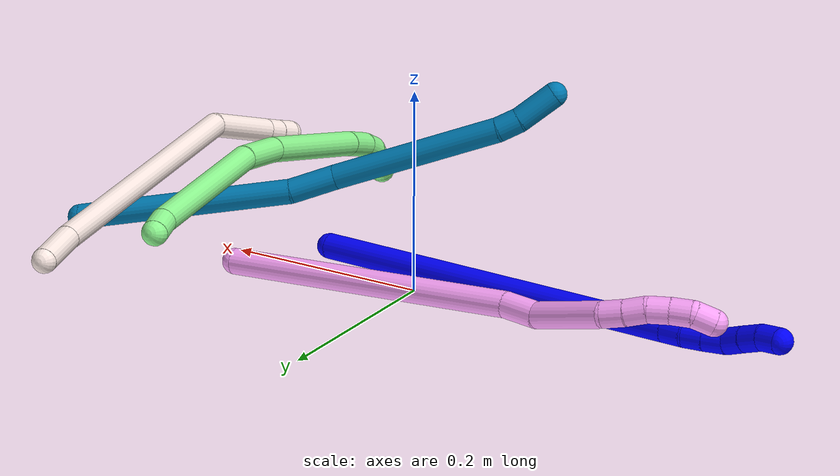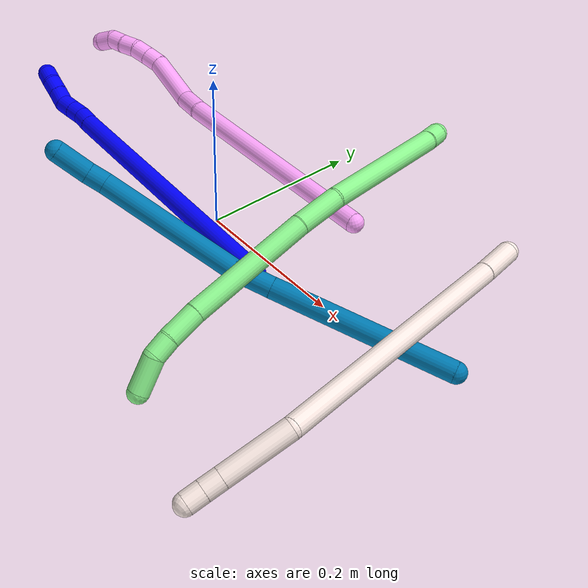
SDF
<sdf version="1.7">
 <world name="default">
  <model name="1">
   <static>0</static>
   <link name="1">
    <collision name="collision-cylinder-e_1_1_4">
     <pose>-0.186642 -0.009663 -0.02153 2.71971 -1.44502 -2.66501</pose>
     <geometry><cylinder><radius>0.0125</radius><length>0.376257</length></cylinder></geometry>
     <surface>
      <friction><ode><mu>1.16</mu><mu2>1.16</mu2><slip1>0</slip1><slip2>0</slip2></ode></friction>
      <contact><ode><kp>1e+06</kp><kd>1</kd><max_vel>0</max_vel><min_depth>0.001</min_depth></ode></contact>
     </surface>
    </collision>
    <visual name="visual-cylinder-e_1_1_4">
     <pose>-0.186642 -0.009663 -0.02153 2.71971 -1.44502 -2.66501</pose>
     <geometry><cylinder><radius>0.0125</radius><length>0.376257</length></cylinder></geometry>
     <material><ambient>0 0 1 1</ambient></material>
    </visual>
    <collision name="collision-cylinder-e_2_4_5">
     <pose>-0.383869 -0.019695 -0.044904 2.94471 -1.39492 -2.90695</pose>
     <geometry><cylinder><radius>0.0125</radius><length>0.0215</length></cylinder></geometry>
     <surface>
      <friction><ode><mu>1.16</mu><mu2>1.16</mu2><slip1>0</slip1><slip2>0</slip2></ode></friction>
      <contact><ode><kp>1e+06</kp><kd>1</kd><max_vel>0</max_vel><min_depth>0.001</min_depth></ode></contact>
     </surface>
    </collision>
    <visual name="visual-cylinder-e_2_4_5">
     <pose>-0.383869 -0.019695 -0.044904 2.94471 -1.39492 -2.90695</pose>
     <geometry><cylinder><radius>0.0125</radius><length>0.0215</length></cylinder></geometry>
     <material><ambient>0 0 1 1</ambient></material>
    </visual>
    <collision name="collision-cylinder-e_3_5_6">
     <pose>-0.404504 -0.020289 -0.046749 1.57332 -1.5483 -1.55082</pose>
     <geometry><cylinder><radius>0.0125</radius><length>0.020106</length></cylinder></geometry>
     <surface>
      <friction><ode><mu>1.16</mu><mu2>1.16</mu2><slip1>0</slip1><slip2>0</slip2></ode></friction>
      <contact><ode><kp>1e+06</kp><kd>1</kd><max_vel>0</max_vel><min_depth>0.001</min_depth></ode></contact>
     </surface>
    </collision>
    <visual name="visual-cylinder-e_3_5_6">
     <pose>-0.404504 -0.020289 -0.046749 1.57332 -1.5483 -1.55082</pose>
     <geometry><cylinder><radius>0.0125</radius><length>0.020106</length></cylinder></geometry>
     <material><ambient>0 0 1 1</ambient></material>
    </visual>
    <collision name="collision-cylinder-e_4_6_7">
     <pose>-0.425304 -0.020434 -0.046728 -1.30361 -1.56296 1.29606</pose>
     <geometry><cylinder><radius>0.0125</radius><length>0.021501</length></cylinder></geometry>
     <surface>
      <friction><ode><mu>1.16</mu><mu2>1.16</mu2><slip1>0</slip1><slip2>0</slip2></ode></friction>
      <contact><ode><kp>1e+06</kp><kd>1</kd><max_vel>0</max_vel><min_depth>0.001</min_depth></ode></contact>
     </surface>
    </collision>
    <visual name="visual-cylinder-e_4_6_7">
     <pose>-0.425304 -0.020434 -0.046728 -1.30361 -1.56296 1.29606</pose>
     <geometry><cylinder><radius>0.0125</radius><length>0.021501</length></cylinder></geometry>
     <material><ambient>0 0 1 1</ambient></material>
    </visual>
    <collision name="collision-cylinder-e_5_7_8">
     <pose>-0.445386 -0.017454 -0.049272 -2.29549 -1.17752 1.95512</pose>
     <geometry><cylinder><radius>0.0125</radius><length>0.020206</length></cylinder></geometry>
     <surface>
      <friction><ode><mu>1.16</mu><mu2>1.16</mu2><slip1>0</slip1><slip2>0</slip2></ode></friction>
      <contact><ode><kp>1e+06</kp><kd>1</kd><max_vel>0</max_vel><min_depth>0.001</min_depth></ode></contact>
     </surface>
    </collision>
    <visual name="visual-cylinder-e_5_7_8">
     <pose>-0.445386 -0.017454 -0.049272 -2.29549 -1.17752 1.95512</pose>
     <geometry><cylinder><radius>0.0125</radius><length>0.020206</length></cylinder></geometry>
     <material><ambient>0 0 1 1</ambient></material>
    </visual>
    <collision name="collision-cylinder-e_6_8_9">
     <pose>-0.464091 -0.011868 -0.054175 -2.28645 -1.20775 1.97406</pose>
     <geometry><cylinder><radius>0.0125</radius><length>0.020054</length></cylinder></geometry>
     <surface>
      <friction><ode><mu>1.16</mu><mu2>1.16</mu2><slip1>0</slip1><slip2>0</slip2></ode></friction>
      <contact><ode><kp>1e+06</kp><kd>1</kd><max_vel>0</max_vel><min_depth>0.001</min_depth></ode></contact>
     </surface>
    </collision>
    <visual name="visual-cylinder-e_6_8_9">
     <pose>-0.464091 -0.011868 -0.054175 -2.28645 -1.20775 1.97406</pose>
     <geometry><cylinder><radius>0.0125</radius><length>0.020054</length></cylinder></geometry>
     <material><ambient>0 0 1 1</ambient></material>
    </visual>
    <collision name="collision-cylinder-e_7_9_2">
     <pose>-0.483127 -0.008779 -0.059719 -3.01712 -1.24792 2.9689</pose>
     <geometry><cylinder><radius>0.0125</radius><length>0.020376</length></cylinder></geometry>
     <surface>
      <friction><ode><mu>1.16</mu><mu2>1.16</mu2><slip1>0</slip1><slip2>0</slip2></ode></friction>
      <contact><ode><kp>1e+06</kp><kd>1</kd><max_vel>0</max_vel><min_depth>0.001</min_depth></ode></contact>
     </surface>
    </collision>
    <visual name="visual-cylinder-e_7_9_2">
     <pose>-0.483127 -0.008779 -0.059719 -3.01712 -1.24792 2.9689</pose>
     <geometry><cylinder><radius>0.0125</radius><length>0.020376</length></cylinder></geometry>
     <material><ambient>0 0 1 1</ambient></material>
    </visual>
    <collision name="collision-sphere-2">
     <pose>-0.492788 -0.008378 -0.062926 0 -0 0</pose>
     <geometry><sphere><radius>0.0125</radius></sphere></geometry>
     <surface>
      <friction><ode><mu>1.16</mu><mu2>1.16</mu2><slip1>0</slip1><slip2>0</slip2></ode></friction>
      <contact><ode><kp>1e+06</kp><kd>1</kd><max_vel>0</max_vel><min_depth>0.001</min_depth></ode></contact>
     </surface>
    </collision>
    <visual name="visual-sphere-2">
     <pose>-0.492788 -0.008378 -0.062926 0 -0 0</pose>
     <geometry><sphere><radius>0.0125</radius></sphere></geometry>
     <material><ambient>0 0 1 1</ambient></material>
    </visual>
    <collision name="collision-sphere-9">
     <pose>-0.473465 -0.009181 -0.056511 0 -0 0</pose>
     <geometry><sphere><radius>0.0125</radius></sphere></geometry>
     <surface>
      <friction><ode><mu>1.16</mu><mu2>1.16</mu2><slip1>0</slip1><slip2>0</slip2></ode></friction>
      <contact><ode><kp>1e+06</kp><kd>1</kd><max_vel>0</max_vel><min_depth>0.001</min_depth></ode></contact>
     </surface>
    </collision>
    <visual name="visual-sphere-9">
     <pose>-0.473465 -0.009181 -0.056511 0 -0 0</pose>
     <geometry><sphere><radius>0.0125</radius></sphere></geometry>
     <material><ambient>0 0 1 1</ambient></material>
    </visual>
    <collision name="collision-sphere-4">
     <pose>-0.373285 -0.019327 -0.04306 0 -0 0</pose>
     <geometry><sphere><radius>0.0125</radius></sphere></geometry>
     <surface>
      <friction><ode><mu>1.16</mu><mu2>1.16</mu2><slip1>0</slip1><slip2>0</slip2></ode></friction>
      <contact><ode><kp>1e+06</kp><kd>1</kd><max_vel>0</max_vel><min_depth>0.001</min_depth></ode></contact>
     </surface>
    </collision>
    <visual name="visual-sphere-4">
     <pose>-0.373285 -0.019327 -0.04306 0 -0 0</pose>
     <geometry><sphere><radius>0.0125</radius></sphere></geometry>
     <material><ambient>0 0 1 1</ambient></material>
    </visual>
    <collision name="collision-sphere-1">
     <geometry><sphere><radius>0.0125</radius></sphere></geometry>
     <surface>
      <friction><ode><mu>1.16</mu><mu2>1.16</mu2><slip1>0</slip1><slip2>0</slip2></ode></friction>
      <contact><ode><kp>1e+06</kp><kd>1</kd><max_vel>0</max_vel><min_depth>0.001</min_depth></ode></contact>
     </surface>
    </collision>
    <visual name="visual-sphere-1">
     <geometry><sphere><radius>0.0125</radius></sphere></geometry>
     <material><ambient>0 0 1 1</ambient></material>
    </visual>
    <collision name="collision-sphere-8">
     <pose>-0.454718 -0.014555 -0.051838 0 -0 0</pose>
     <geometry><sphere><radius>0.0125</radius></sphere></geometry>
     <surface>
      <friction><ode><mu>1.16</mu><mu2>1.16</mu2><slip1>0</slip1><slip2>0</slip2></ode></friction>
      <contact><ode><kp>1e+06</kp><kd>1</kd><max_vel>0</max_vel><min_depth>0.001</min_depth></ode></contact>
     </surface>
    </collision>
    <visual name="visual-sphere-8">
     <pose>-0.454718 -0.014555 -0.051838 0 -0 0</pose>
     <geometry><sphere><radius>0.0125</radius></sphere></geometry>
     <material><ambient>0 0 1 1</ambient></material>
    </visual>
    <collision name="collision-sphere-5">
     <pose>-0.394453 -0.020063 -0.046749 0 -0 0</pose>
     <geometry><sphere><radius>0.0125</radius></sphere></geometry>
     <surface>
      <friction><ode><mu>1.16</mu><mu2>1.16</mu2><slip1>0</slip1><slip2>0</slip2></ode></friction>
      <contact><ode><kp>1e+06</kp><kd>1</kd><max_vel>0</max_vel><min_depth>0.001</min_depth></ode></contact>
     </surface>
    </collision>
    <visual name="visual-sphere-5">
     <pose>-0.394453 -0.020063 -0.046749 0 -0 0</pose>
     <geometry><sphere><radius>0.0125</radius></sphere></geometry>
     <material><ambient>0 0 1 1</ambient></material>
    </visual>
    <collision name="collision-sphere-6">
     <pose>-0.414554 -0.020515 -0.04675 0 -0 0</pose>
     <geometry><sphere><radius>0.0125</radius></sphere></geometry>
     <surface>
      <friction><ode><mu>1.16</mu><mu2>1.16</mu2><slip1>0</slip1><slip2>0</slip2></ode></friction>
      <contact><ode><kp>1e+06</kp><kd>1</kd><max_vel>0</max_vel><min_depth>0.001</min_depth></ode></contact>
     </surface>
    </collision>
    <visual name="visual-sphere-6">
     <pose>-0.414554 -0.020515 -0.04675 0 -0 0</pose>
     <geometry><sphere><radius>0.0125</radius></sphere></geometry>
     <material><ambient>0 0 1 1</ambient></material>
    </visual>
    <collision name="collision-sphere-7">
     <pose>-0.436055 -0.020352 -0.046705 0 -0 0</pose>
     <geometry><sphere><radius>0.0125</radius></sphere></geometry>
     <surface>
      <friction><ode><mu>1.16</mu><mu2>1.16</mu2><slip1>0</slip1><slip2>0</slip2></ode></friction>
      <contact><ode><kp>1e+06</kp><kd>1</kd><max_vel>0</max_vel><min_depth>0.001</min_depth></ode></contact>
     </surface>
    </collision>
    <visual name="visual-sphere-7">
     <pose>-0.436055 -0.020352 -0.046705 0 -0 0</pose>
     <geometry><sphere><radius>0.0125</radius></sphere></geometry>
     <material><ambient>0 0 1 1</ambient></material>
    </visual>
    <inertial>
     <pose>-0.247813 -0.011352 -0.028619 0 -0 0</pose>
     <mass>0.5</mass>
     <inertia>
      <ixx>-0.000791</ixx>
      <ixy>0</ixy>
      <ixz>0</ixz>
      <iyy>0.004193</iyy>
      <iyz>0</iyz>
      <izz>0.00465</izz>
     </inertia>
    </inertial>
   </link>
   <pose>0.116482 -0.031723 0.011495 1.71848 0.034331 0.084768</pose>
  </model>
  <model name="4">
   <static>0</static>
   <link name="4">
    <collision name="collision-cylinder-e_1_1_4">
     <pose>-0.13727 -0.020902 0.040592 0.475519 -1.2497 -0.346087</pose>
     <geometry><cylinder><radius>0.0125</radius><length>0.289328</length></cylinder></geometry>
     <surface>
      <friction><ode><mu>1.16</mu><mu2>1.16</mu2><slip1>0</slip1><slip2>0</slip2></ode></friction>
      <contact><ode><kp>1e+06</kp><kd>1</kd><max_vel>0</max_vel><min_depth>0.001</min_depth></ode></contact>
     </surface>
    </collision>
    <visual name="visual-cylinder-e_1_1_4">
     <pose>-0.13727 -0.020902 0.040592 0.475519 -1.2497 -0.346087</pose>
     <geometry><cylinder><radius>0.0125</radius><length>0.289328</length></cylinder></geometry>
     <material><ambient>1 0.65098 0.996078 1</ambient></material>
    </visual>
    <collision name="collision-cylinder-e_2_4_5">
     <pose>-0.291495 -0.041947 0.084168 0.048022 -1.39637 -0.040302</pose>
     <geometry><cylinder><radius>0.0125</radius><length>0.034431</length></cylinder></geometry>
     <surface>
      <friction><ode><mu>1.16</mu><mu2>1.16</mu2><slip1>0</slip1><slip2>0</slip2></ode></friction>
      <contact><ode><kp>1e+06</kp><kd>1</kd><max_vel>0</max_vel><min_depth>0.001</min_depth></ode></contact>
     </surface>
    </collision>
    <visual name="visual-cylinder-e_2_4_5">
     <pose>-0.291495 -0.041947 0.084168 0.048022 -1.39637 -0.040302</pose>
     <geometry><cylinder><radius>0.0125</radius><length>0.034431</length></cylinder></geometry>
     <material><ambient>1 0.65098 0.996078 1</ambient></material>
    </visual>
    <collision name="collision-cylinder-e_3_5_6">
     <pose>-0.340924 -0.041198 0.103877 -0.053315 -1.09462 0.032496</pose>
     <geometry><cylinder><radius>0.0125</radius><length>0.073079</length></cylinder></geometry>
     <surface>
      <friction><ode><mu>1.16</mu><mu2>1.16</mu2><slip1>0</slip1><slip2>0</slip2></ode></friction>
      <contact><ode><kp>1e+06</kp><kd>1</kd><max_vel>0</max_vel><min_depth>0.001</min_depth></ode></contact>
     </surface>
    </collision>
    <visual name="visual-cylinder-e_3_5_6">
     <pose>-0.340924 -0.041198 0.103877 -0.053315 -1.09462 0.032496</pose>
     <geometry><cylinder><radius>0.0125</radius><length>0.073079</length></cylinder></geometry>
     <material><ambient>1 0.65098 0.996078 1</ambient></material>
    </visual>
    <collision name="collision-cylinder-e_4_6_7">
     <pose>-0.382486 -0.043325 0.125351 0.566393 -1.01634 -0.321375</pose>
     <geometry><cylinder><radius>0.0125</radius><length>0.021376</length></cylinder></geometry>
     <surface>
      <friction><ode><mu>1.16</mu><mu2>1.16</mu2><slip1>0</slip1><slip2>0</slip2></ode></friction>
      <contact><ode><kp>1e+06</kp><kd>1</kd><max_vel>0</max_vel><min_depth>0.001</min_depth></ode></contact>
     </surface>
    </collision>
    <visual name="visual-cylinder-e_4_6_7">
     <pose>-0.382486 -0.043325 0.125351 0.566393 -1.01634 -0.321375</pose>
     <geometry><cylinder><radius>0.0125</radius><length>0.021376</length></cylinder></geometry>
     <material><ambient>1 0.65098 0.996078 1</ambient></material>
    </visual>
    <collision name="collision-cylinder-e_5_7_8">
     <pose>-0.399759 -0.049946 0.135107 0.623526 -0.925044 -0.318642</pose>
     <geometry><cylinder><radius>0.0125</radius><length>0.0205</length></cylinder></geometry>
     <surface>
      <friction><ode><mu>1.16</mu><mu2>1.16</mu2><slip1>0</slip1><slip2>0</slip2></ode></friction>
      <contact><ode><kp>1e+06</kp><kd>1</kd><max_vel>0</max_vel><min_depth>0.001</min_depth></ode></contact>
     </surface>
    </collision>
    <visual name="visual-cylinder-e_5_7_8">
     <pose>-0.399759 -0.049946 0.135107 0.623526 -0.925044 -0.318642</pose>
     <geometry><cylinder><radius>0.0125</radius><length>0.0205</length></cylinder></geometry>
     <material><ambient>1 0.65098 0.996078 1</ambient></material>
    </visual>
    <collision name="collision-cylinder-e_6_8_9">
     <pose>-0.416926 -0.058015 0.142937 1.00727 -1.03895 -0.610527</pose>
     <geometry><cylinder><radius>0.0125</radius><length>0.02084</length></cylinder></geometry>
     <surface>
      <friction><ode><mu>1.16</mu><mu2>1.16</mu2><slip1>0</slip1><slip2>0</slip2></ode></friction>
      <contact><ode><kp>1e+06</kp><kd>1</kd><max_vel>0</max_vel><min_depth>0.001</min_depth></ode></contact>
     </surface>
    </collision>
    <visual name="visual-cylinder-e_6_8_9">
     <pose>-0.416926 -0.058015 0.142937 1.00727 -1.03895 -0.610527</pose>
     <geometry><cylinder><radius>0.0125</radius><length>0.02084</length></cylinder></geometry>
     <material><ambient>1 0.65098 0.996078 1</ambient></material>
    </visual>
    <collision name="collision-cylinder-e_7_9_10">
     <pose>-0.435267 -0.065729 0.148194 0.92752 -1.16175 -0.634429</pose>
     <geometry><cylinder><radius>0.0125</radius><length>0.020405</length></cylinder></geometry>
     <surface>
      <friction><ode><mu>1.16</mu><mu2>1.16</mu2><slip1>0</slip1><slip2>0</slip2></ode></friction>
      <contact><ode><kp>1e+06</kp><kd>1</kd><max_vel>0</max_vel><min_depth>0.001</min_depth></ode></contact>
     </surface>
    </collision>
    <visual name="visual-cylinder-e_7_9_10">
     <pose>-0.435267 -0.065729 0.148194 0.92752 -1.16175 -0.634429</pose>
     <geometry><cylinder><radius>0.0125</radius><length>0.020405</length></cylinder></geometry>
     <material><ambient>1 0.65098 0.996078 1</ambient></material>
    </visual>
    <collision name="collision-cylinder-e_8_10_2">
     <pose>-0.452719 -0.074694 0.149132 1.82675 -0.939961 -1.16392</pose>
     <geometry><cylinder><radius>0.0125</radius><length>0.02004</length></cylinder></geometry>
     <surface>
      <friction><ode><mu>1.16</mu><mu2>1.16</mu2><slip1>0</slip1><slip2>0</slip2></ode></friction>
      <contact><ode><kp>1e+06</kp><kd>1</kd><max_vel>0</max_vel><min_depth>0.001</min_depth></ode></contact>
     </surface>
    </collision>
    <visual name="visual-cylinder-e_8_10_2">
     <pose>-0.452719 -0.074694 0.149132 1.82675 -0.939961 -1.16392</pose>
     <geometry><cylinder><radius>0.0125</radius><length>0.02004</length></cylinder></geometry>
     <material><ambient>1 0.65098 0.996078 1</ambient></material>
    </visual>
    <collision name="collision-sphere-2">
     <pose>-0.460811 -0.080411 0.147636 0 -0 0</pose>
     <geometry><sphere><radius>0.0125</radius></sphere></geometry>
     <surface>
      <friction><ode><mu>1.16</mu><mu2>1.16</mu2><slip1>0</slip1><slip2>0</slip2></ode></friction>
      <contact><ode><kp>1e+06</kp><kd>1</kd><max_vel>0</max_vel><min_depth>0.001</min_depth></ode></contact>
     </surface>
    </collision>
    <visual name="visual-sphere-2">
     <pose>-0.460811 -0.080411 0.147636 0 -0 0</pose>
     <geometry><sphere><radius>0.0125</radius></sphere></geometry>
     <material><ambient>1 0.65098 0.996078 1</ambient></material>
    </visual>
    <collision name="collision-sphere-10">
     <pose>-0.444628 -0.068976 0.150628 0 -0 0</pose>
     <geometry><sphere><radius>0.0125</radius></sphere></geometry>
     <surface>
      <friction><ode><mu>1.16</mu><mu2>1.16</mu2><slip1>0</slip1><slip2>0</slip2></ode></friction>
      <contact><ode><kp>1e+06</kp><kd>1</kd><max_vel>0</max_vel><min_depth>0.001</min_depth></ode></contact>
     </surface>
    </collision>
    <visual name="visual-sphere-10">
     <pose>-0.444628 -0.068976 0.150628 0 -0 0</pose>
     <geometry><sphere><radius>0.0125</radius></sphere></geometry>
     <material><ambient>1 0.65098 0.996078 1</ambient></material>
    </visual>
    <collision name="collision-sphere-9">
     <pose>-0.425906 -0.062482 0.14576 0 -0 0</pose>
     <geometry><sphere><radius>0.0125</radius></sphere></geometry>
     <surface>
      <friction><ode><mu>1.16</mu><mu2>1.16</mu2><slip1>0</slip1><slip2>0</slip2></ode></friction>
      <contact><ode><kp>1e+06</kp><kd>1</kd><max_vel>0</max_vel><min_depth>0.001</min_depth></ode></contact>
     </surface>
    </collision>
    <visual name="visual-sphere-9">
     <pose>-0.425906 -0.062482 0.14576 0 -0 0</pose>
     <geometry><sphere><radius>0.0125</radius></sphere></geometry>
     <material><ambient>1 0.65098 0.996078 1</ambient></material>
    </visual>
    <collision name="collision-sphere-4">
     <pose>-0.274541 -0.041804 0.081183 0 -0 0</pose>
     <geometry><sphere><radius>0.0125</radius></sphere></geometry>
     <surface>
      <friction><ode><mu>1.16</mu><mu2>1.16</mu2><slip1>0</slip1><slip2>0</slip2></ode></friction>
      <contact><ode><kp>1e+06</kp><kd>1</kd><max_vel>0</max_vel><min_depth>0.001</min_depth></ode></contact>
     </surface>
    </collision>
    <visual name="visual-sphere-4">
     <pose>-0.274541 -0.041804 0.081183 0 -0 0</pose>
     <geometry><sphere><radius>0.0125</radius></sphere></geometry>
     <material><ambient>1 0.65098 0.996078 1</ambient></material>
    </visual>
    <collision name="collision-sphere-1">
     <geometry><sphere><radius>0.0125</radius></sphere></geometry>
     <surface>
      <friction><ode><mu>1.16</mu><mu2>1.16</mu2><slip1>0</slip1><slip2>0</slip2></ode></friction>
      <contact><ode><kp>1e+06</kp><kd>1</kd><max_vel>0</max_vel><min_depth>0.001</min_depth></ode></contact>
     </surface>
    </collision>
    <visual name="visual-sphere-1">
     <geometry><sphere><radius>0.0125</radius></sphere></geometry>
     <material><ambient>1 0.65098 0.996078 1</ambient></material>
    </visual>
    <collision name="collision-sphere-8">
     <pose>-0.407945 -0.053548 0.140115 0 -0 0</pose>
     <geometry><sphere><radius>0.0125</radius></sphere></geometry>
     <surface>
      <friction><ode><mu>1.16</mu><mu2>1.16</mu2><slip1>0</slip1><slip2>0</slip2></ode></friction>
      <contact><ode><kp>1e+06</kp><kd>1</kd><max_vel>0</max_vel><min_depth>0.001</min_depth></ode></contact>
     </surface>
    </collision>
    <visual name="visual-sphere-8">
     <pose>-0.407945 -0.053548 0.140115 0 -0 0</pose>
     <geometry><sphere><radius>0.0125</radius></sphere></geometry>
     <material><ambient>1 0.65098 0.996078 1</ambient></material>
    </visual>
    <collision name="collision-sphere-5">
     <pose>-0.308449 -0.042091 0.087152 0 -0 0</pose>
     <geometry><sphere><radius>0.0125</radius></sphere></geometry>
     <surface>
      <friction><ode><mu>1.16</mu><mu2>1.16</mu2><slip1>0</slip1><slip2>0</slip2></ode></friction>
      <contact><ode><kp>1e+06</kp><kd>1</kd><max_vel>0</max_vel><min_depth>0.001</min_depth></ode></contact>
     </surface>
    </collision>
    <visual name="visual-sphere-5">
     <pose>-0.308449 -0.042091 0.087152 0 -0 0</pose>
     <geometry><sphere><radius>0.0125</radius></sphere></geometry>
     <material><ambient>1 0.65098 0.996078 1</ambient></material>
    </visual>
    <collision name="collision-sphere-6">
     <pose>-0.373399 -0.040305 0.120602 0 -0 0</pose>
     <geometry><sphere><radius>0.0125</radius></sphere></geometry>
     <surface>
      <friction><ode><mu>1.16</mu><mu2>1.16</mu2><slip1>0</slip1><slip2>0</slip2></ode></friction>
      <contact><ode><kp>1e+06</kp><kd>1</kd><max_vel>0</max_vel><min_depth>0.001</min_depth></ode></contact>
     </surface>
    </collision>
    <visual name="visual-sphere-6">
     <pose>-0.373399 -0.040305 0.120602 0 -0 0</pose>
     <geometry><sphere><radius>0.0125</radius></sphere></geometry>
     <material><ambient>1 0.65098 0.996078 1</ambient></material>
    </visual>
    <collision name="collision-sphere-7">
     <pose>-0.391573 -0.046344 0.130099 0 -0 0</pose>
     <geometry><sphere><radius>0.0125</radius></sphere></geometry>
     <surface>
      <friction><ode><mu>1.16</mu><mu2>1.16</mu2><slip1>0</slip1><slip2>0</slip2></ode></friction>
      <contact><ode><kp>1e+06</kp><kd>1</kd><max_vel>0</max_vel><min_depth>0.001</min_depth></ode></contact>
     </surface>
    </collision>
    <visual name="visual-sphere-7">
     <pose>-0.391573 -0.046344 0.130099 0 -0 0</pose>
     <geometry><sphere><radius>0.0125</radius></sphere></geometry>
     <material><ambient>1 0.65098 0.996078 1</ambient></material>
    </visual>
    <inertial>
     <pose>-0.235362 -0.032999 0.073348 0 -0 0</pose>
     <mass>0.5</mass>
     <inertia>
      <ixx>0.000368</ixx>
      <ixy>0</ixy>
      <ixz>0</ixz>
      <iyy>0.001818</iyy>
      <iyz>0</iyz>
      <izz>0.002275</izz>
     </inertia>
    </inertial>
   </link>
   <pose>0.138286 0.098572 0.034337 0.12842 -0.219484 -0.132644</pose>
  </model>
  <model name="9">
   <static>0</static>
   <link name="9">
    <collision name="collision-cylinder-e_1_1_4">
     <pose>-0.100294 -0.033501 -0.022778 2.16793 -1.18691 -1.81093</pose>
     <geometry><cylinder><radius>0.0125</radius><length>0.216333</length></cylinder></geometry>
     <surface>
      <friction><ode><mu>1.16</mu><mu2>1.16</mu2><slip1>0</slip1><slip2>0</slip2></ode></friction>
      <contact><ode><kp>1e+06</kp><kd>1</kd><max_vel>0</max_vel><min_depth>0.001</min_depth></ode></contact>
     </surface>
    </collision>
    <visual name="visual-cylinder-e_1_1_4">
     <pose>-0.100294 -0.033501 -0.022778 2.16793 -1.18691 -1.81093</pose>
     <geometry><cylinder><radius>0.0125</radius><length>0.216333</length></cylinder></geometry>
     <material><ambient>0 0.490196 0.709804 1</ambient></material>
    </visual>
    <collision name="collision-cylinder-e_2_4_5">
     <pose>-0.221974 -0.070794 -0.053692 2.70536 -1.17342 -2.49798</pose>
     <geometry><cylinder><radius>0.0125</radius><length>0.046387</length></cylinder></geometry>
     <surface>
      <friction><ode><mu>1.16</mu><mu2>1.16</mu2><slip1>0</slip1><slip2>0</slip2></ode></friction>
      <contact><ode><kp>1e+06</kp><kd>1</kd><max_vel>0</max_vel><min_depth>0.001</min_depth></ode></contact>
     </surface>
    </collision>
    <visual name="visual-cylinder-e_2_4_5">
     <pose>-0.221974 -0.070794 -0.053692 2.70536 -1.17342 -2.49798</pose>
     <geometry><cylinder><radius>0.0125</radius><length>0.046387</length></cylinder></geometry>
     <material><ambient>0 0.490196 0.709804 1</ambient></material>
    </visual>
    <collision name="collision-cylinder-e_3_5_6">
     <pose>-0.317632 -0.102604 -0.094923 2.4391 -1.04235 -2.00542</pose>
     <geometry><cylinder><radius>0.0125</radius><length>0.172008</length></cylinder></geometry>
     <surface>
      <friction><ode><mu>1.16</mu><mu2>1.16</mu2><slip1>0</slip1><slip2>0</slip2></ode></friction>
      <contact><ode><kp>1e+06</kp><kd>1</kd><max_vel>0</max_vel><min_depth>0.001</min_depth></ode></contact>
     </surface>
    </collision>
    <visual name="visual-cylinder-e_3_5_6">
     <pose>-0.317632 -0.102604 -0.094923 2.4391 -1.04235 -2.00542</pose>
     <geometry><cylinder><radius>0.0125</radius><length>0.172008</length></cylinder></geometry>
     <material><ambient>0 0.490196 0.709804 1</ambient></material>
    </visual>
    <collision name="collision-cylinder-e_4_6_7">
     <pose>-0.401901 -0.132366 -0.133425 2.8295 -1.05404 -2.61351</pose>
     <geometry><cylinder><radius>0.0125</radius><length>0.022995</length></cylinder></geometry>
     <surface>
      <friction><ode><mu>1.16</mu><mu2>1.16</mu2><slip1>0</slip1><slip2>0</slip2></ode></friction>
      <contact><ode><kp>1e+06</kp><kd>1</kd><max_vel>0</max_vel><min_depth>0.001</min_depth></ode></contact>
     </surface>
    </collision>
    <visual name="visual-cylinder-e_4_6_7">
     <pose>-0.401901 -0.132366 -0.133425 2.8295 -1.05404 -2.61351</pose>
     <geometry><cylinder><radius>0.0125</radius><length>0.022995</length></cylinder></geometry>
     <material><ambient>0 0.490196 0.709804 1</ambient></material>
    </visual>
    <collision name="collision-cylinder-e_5_7_2">
     <pose>-0.428623 -0.134896 -0.151733 3.0808 -0.912836 -3.0179</pose>
     <geometry><cylinder><radius>0.0125</radius><length>0.042277</length></cylinder></geometry>
     <surface>
      <friction><ode><mu>1.16</mu><mu2>1.16</mu2><slip1>0</slip1><slip2>0</slip2></ode></friction>
      <contact><ode><kp>1e+06</kp><kd>1</kd><max_vel>0</max_vel><min_depth>0.001</min_depth></ode></contact>
     </surface>
    </collision>
    <visual name="visual-cylinder-e_5_7_2">
     <pose>-0.428623 -0.134896 -0.151733 3.0808 -0.912836 -3.0179</pose>
     <geometry><cylinder><radius>0.0125</radius><length>0.042277</length></cylinder></geometry>
     <material><ambient>0 0.490196 0.709804 1</ambient></material>
    </visual>
    <collision name="collision-sphere-2">
     <pose>-0.445348 -0.135681 -0.164636 0 -0 0</pose>
     <geometry><sphere><radius>0.0125</radius></sphere></geometry>
     <surface>
      <friction><ode><mu>1.16</mu><mu2>1.16</mu2><slip1>0</slip1><slip2>0</slip2></ode></friction>
      <contact><ode><kp>1e+06</kp><kd>1</kd><max_vel>0</max_vel><min_depth>0.001</min_depth></ode></contact>
     </surface>
    </collision>
    <visual name="visual-sphere-2">
     <pose>-0.445348 -0.135681 -0.164636 0 -0 0</pose>
     <geometry><sphere><radius>0.0125</radius></sphere></geometry>
     <material><ambient>0 0.490196 0.709804 1</ambient></material>
    </visual>
    <collision name="collision-sphere-7">
     <pose>-0.411897 -0.134111 -0.138831 0 -0 0</pose>
     <geometry><sphere><radius>0.0125</radius></sphere></geometry>
     <surface>
      <friction><ode><mu>1.16</mu><mu2>1.16</mu2><slip1>0</slip1><slip2>0</slip2></ode></friction>
      <contact><ode><kp>1e+06</kp><kd>1</kd><max_vel>0</max_vel><min_depth>0.001</min_depth></ode></contact>
     </surface>
    </collision>
    <visual name="visual-sphere-7">
     <pose>-0.411897 -0.134111 -0.138831 0 -0 0</pose>
     <geometry><sphere><radius>0.0125</radius></sphere></geometry>
     <material><ambient>0 0.490196 0.709804 1</ambient></material>
    </visual>
    <collision name="collision-sphere-6">
     <pose>-0.391905 -0.130622 -0.128019 0 -0 0</pose>
     <geometry><sphere><radius>0.0125</radius></sphere></geometry>
     <surface>
      <friction><ode><mu>1.16</mu><mu2>1.16</mu2><slip1>0</slip1><slip2>0</slip2></ode></friction>
      <contact><ode><kp>1e+06</kp><kd>1</kd><max_vel>0</max_vel><min_depth>0.001</min_depth></ode></contact>
     </surface>
    </collision>
    <visual name="visual-sphere-6">
     <pose>-0.391905 -0.130622 -0.128019 0 -0 0</pose>
     <geometry><sphere><radius>0.0125</radius></sphere></geometry>
     <material><ambient>0 0.490196 0.709804 1</ambient></material>
    </visual>
    <collision name="collision-sphere-5">
     <pose>-0.24336 -0.074587 -0.061827 0 -0 0</pose>
     <geometry><sphere><radius>0.0125</radius></sphere></geometry>
     <surface>
      <friction><ode><mu>1.16</mu><mu2>1.16</mu2><slip1>0</slip1><slip2>0</slip2></ode></friction>
      <contact><ode><kp>1e+06</kp><kd>1</kd><max_vel>0</max_vel><min_depth>0.001</min_depth></ode></contact>
     </surface>
    </collision>
    <visual name="visual-sphere-5">
     <pose>-0.24336 -0.074587 -0.061827 0 -0 0</pose>
     <geometry><sphere><radius>0.0125</radius></sphere></geometry>
     <material><ambient>0 0.490196 0.709804 1</ambient></material>
    </visual>
    <collision name="collision-sphere-1">
     <geometry><sphere><radius>0.0125</radius></sphere></geometry>
     <surface>
      <friction><ode><mu>1.16</mu><mu2>1.16</mu2><slip1>0</slip1><slip2>0</slip2></ode></friction>
      <contact><ode><kp>1e+06</kp><kd>1</kd><max_vel>0</max_vel><min_depth>0.001</min_depth></ode></contact>
     </surface>
    </collision>
    <visual name="visual-sphere-1">
     <geometry><sphere><radius>0.0125</radius></sphere></geometry>
     <material><ambient>0 0.490196 0.709804 1</ambient></material>
    </visual>
    <collision name="collision-sphere-4">
     <pose>-0.200587 -0.067001 -0.045556 0 -0 0</pose>
     <geometry><sphere><radius>0.0125</radius></sphere></geometry>
     <surface>
      <friction><ode><mu>1.16</mu><mu2>1.16</mu2><slip1>0</slip1><slip2>0</slip2></ode></friction>
      <contact><ode><kp>1e+06</kp><kd>1</kd><max_vel>0</max_vel><min_depth>0.001</min_depth></ode></contact>
     </surface>
    </collision>
    <visual name="visual-sphere-4">
     <pose>-0.200587 -0.067001 -0.045556 0 -0 0</pose>
     <geometry><sphere><radius>0.0125</radius></sphere></geometry>
     <material><ambient>0 0.490196 0.709804 1</ambient></material>
    </visual>
    <inertial>
     <pose>-0.227983 -0.073854 -0.066457 0 -0 0</pose>
     <mass>0.5</mass>
     <inertia>
      <ixx>-0.000721</ixx>
      <ixy>0</ixy>
      <ixz>0</ixz>
      <iyy>0.000604</iyy>
      <iyz>0</iyz>
      <izz>0.001573</izz>
     </inertia>
    </inertial>
   </link>
   <pose>0.371899 0.034471 0.01191 3.08398 -0.029952 0.782564</pose>
  </model>
  <model name="11">
   <static>0</static>
   <link name="11">
    <collision name="collision-cylinder-e_1_1_4">
     <pose>0.00293 -0.006123 0.025194 0.238427 0.112544 0.013495</pose>
     <geometry><cylinder><radius>0.0125</radius><length>0.052185</length></cylinder></geometry>
     <surface>
      <friction><ode><mu>1.16</mu><mu2>1.16</mu2><slip1>0</slip1><slip2>0</slip2></ode></friction>
      <contact><ode><kp>1e+06</kp><kd>1</kd><max_vel>0</max_vel><min_depth>0.001</min_depth></ode></contact>
     </surface>
    </collision>
    <visual name="visual-cylinder-e_1_1_4">
     <pose>0.00293 -0.006123 0.025194 0.238427 0.112544 0.013495</pose>
     <geometry><cylinder><radius>0.0125</radius><length>0.052185</length></cylinder></geometry>
     <material><ambient>1 0.933333 0.909804 1</ambient></material>
    </visual>
    <collision name="collision-cylinder-e_2_4_5">
     <pose>0.027468 -0.038719 0.209158 0.165215 0.13344 0.011065</pose>
     <geometry><cylinder><radius>0.0125</radius><length>0.32481</length></cylinder></geometry>
     <surface>
      <friction><ode><mu>1.16</mu><mu2>1.16</mu2><slip1>0</slip1><slip2>0</slip2></ode></friction>
      <contact><ode><kp>1e+06</kp><kd>1</kd><max_vel>0</max_vel><min_depth>0.001</min_depth></ode></contact>
     </surface>
    </collision>
    <visual name="visual-cylinder-e_2_4_5">
     <pose>0.027468 -0.038719 0.209158 0.165215 0.13344 0.011065</pose>
     <geometry><cylinder><radius>0.0125</radius><length>0.32481</length></cylinder></geometry>
     <material><ambient>1 0.933333 0.909804 1</ambient></material>
    </visual>
    <collision name="collision-cylinder-e_3_5_6">
     <pose>0.053711 -0.052927 0.406504 -0.307812 0.114039 -0.01771</pose>
     <geometry><cylinder><radius>0.0125</radius><length>0.081489</length></cylinder></geometry>
     <surface>
      <friction><ode><mu>1.16</mu><mu2>1.16</mu2><slip1>0</slip1><slip2>0</slip2></ode></friction>
      <contact><ode><kp>1e+06</kp><kd>1</kd><max_vel>0</max_vel><min_depth>0.001</min_depth></ode></contact>
     </surface>
    </collision>
    <visual name="visual-cylinder-e_3_5_6">
     <pose>0.053711 -0.052927 0.406504 -0.307812 0.114039 -0.01771</pose>
     <geometry><cylinder><radius>0.0125</radius><length>0.081489</length></cylinder></geometry>
     <material><ambient>1 0.933333 0.909804 1</ambient></material>
    </visual>
    <collision name="collision-cylinder-e_4_6_7">
     <pose>0.05957 -0.037521 0.454975 -0.307514 0.117172 -0.01818</pose>
     <geometry><cylinder><radius>0.0125</radius><length>0.020904</length></cylinder></geometry>
     <surface>
      <friction><ode><mu>1.16</mu><mu2>1.16</mu2><slip1>0</slip1><slip2>0</slip2></ode></friction>
      <contact><ode><kp>1e+06</kp><kd>1</kd><max_vel>0</max_vel><min_depth>0.001</min_depth></ode></contact>
     </surface>
    </collision>
    <visual name="visual-cylinder-e_4_6_7">
     <pose>0.05957 -0.037521 0.454975 -0.307514 0.117172 -0.01818</pose>
     <geometry><cylinder><radius>0.0125</radius><length>0.020904</length></cylinder></geometry>
     <material><ambient>1 0.933333 0.909804 1</ambient></material>
    </visual>
    <collision name="collision-cylinder-e_5_7_2">
     <pose>0.061962 -0.031634 0.474733 -0.271374 0.113844 -0.015559</pose>
     <geometry><cylinder><radius>0.0125</radius><length>0.020611</length></cylinder></geometry>
     <surface>
      <friction><ode><mu>1.16</mu><mu2>1.16</mu2><slip1>0</slip1><slip2>0</slip2></ode></friction>
      <contact><ode><kp>1e+06</kp><kd>1</kd><max_vel>0</max_vel><min_depth>0.001</min_depth></ode></contact>
     </surface>
    </collision>
    <visual name="visual-cylinder-e_5_7_2">
     <pose>0.061962 -0.031634 0.474733 -0.271374 0.113844 -0.015559</pose>
     <geometry><cylinder><radius>0.0125</radius><length>0.020611</length></cylinder></geometry>
     <material><ambient>1 0.933333 0.909804 1</ambient></material>
    </visual>
    <collision name="collision-sphere-2">
     <pose>0.063133 -0.02889 0.484597 0 -0 0</pose>
     <geometry><sphere><radius>0.0125</radius></sphere></geometry>
     <surface>
      <friction><ode><mu>1.16</mu><mu2>1.16</mu2><slip1>0</slip1><slip2>0</slip2></ode></friction>
      <contact><ode><kp>1e+06</kp><kd>1</kd><max_vel>0</max_vel><min_depth>0.001</min_depth></ode></contact>
     </surface>
    </collision>
    <visual name="visual-sphere-2">
     <pose>0.063133 -0.02889 0.484597 0 -0 0</pose>
     <geometry><sphere><radius>0.0125</radius></sphere></geometry>
     <material><ambient>1 0.933333 0.909804 1</ambient></material>
    </visual>
    <collision name="collision-sphere-7">
     <pose>0.060792 -0.034379 0.464869 0 -0 0</pose>
     <geometry><sphere><radius>0.0125</radius></sphere></geometry>
     <surface>
      <friction><ode><mu>1.16</mu><mu2>1.16</mu2><slip1>0</slip1><slip2>0</slip2></ode></friction>
      <contact><ode><kp>1e+06</kp><kd>1</kd><max_vel>0</max_vel><min_depth>0.001</min_depth></ode></contact>
     </surface>
    </collision>
    <visual name="visual-sphere-7">
     <pose>0.060792 -0.034379 0.464869 0 -0 0</pose>
     <geometry><sphere><radius>0.0125</radius></sphere></geometry>
     <material><ambient>1 0.933333 0.909804 1</ambient></material>
    </visual>
    <collision name="collision-sphere-6">
     <pose>0.058348 -0.040663 0.445082 0 -0 0</pose>
     <geometry><sphere><radius>0.0125</radius></sphere></geometry>
     <surface>
      <friction><ode><mu>1.16</mu><mu2>1.16</mu2><slip1>0</slip1><slip2>0</slip2></ode></friction>
      <contact><ode><kp>1e+06</kp><kd>1</kd><max_vel>0</max_vel><min_depth>0.001</min_depth></ode></contact>
     </surface>
    </collision>
    <visual name="visual-sphere-6">
     <pose>0.058348 -0.040663 0.445082 0 -0 0</pose>
     <geometry><sphere><radius>0.0125</radius></sphere></geometry>
     <material><ambient>1 0.933333 0.909804 1</ambient></material>
    </visual>
    <collision name="collision-sphere-5">
     <pose>0.049075 -0.065192 0.367927 0 -0 0</pose>
     <geometry><sphere><radius>0.0125</radius></sphere></geometry>
     <surface>
      <friction><ode><mu>1.16</mu><mu2>1.16</mu2><slip1>0</slip1><slip2>0</slip2></ode></friction>
      <contact><ode><kp>1e+06</kp><kd>1</kd><max_vel>0</max_vel><min_depth>0.001</min_depth></ode></contact>
     </surface>
    </collision>
    <visual name="visual-sphere-5">
     <pose>0.049075 -0.065192 0.367927 0 -0 0</pose>
     <geometry><sphere><radius>0.0125</radius></sphere></geometry>
     <material><ambient>1 0.933333 0.909804 1</ambient></material>
    </visual>
    <collision name="collision-sphere-1">
     <geometry><sphere><radius>0.0125</radius></sphere></geometry>
     <surface>
      <friction><ode><mu>1.16</mu><mu2>1.16</mu2><slip1>0</slip1><slip2>0</slip2></ode></friction>
      <contact><ode><kp>1e+06</kp><kd>1</kd><max_vel>0</max_vel><min_depth>0.001</min_depth></ode></contact>
     </surface>
    </collision>
    <visual name="visual-sphere-1">
     <geometry><sphere><radius>0.0125</radius></sphere></geometry>
     <material><ambient>1 0.933333 0.909804 1</ambient></material>
    </visual>
    <collision name="collision-sphere-4">
     <pose>0.005861 -0.012247 0.050388 0 -0 0</pose>
     <geometry><sphere><radius>0.0125</radius></sphere></geometry>
     <surface>
      <friction><ode><mu>1.16</mu><mu2>1.16</mu2><slip1>0</slip1><slip2>0</slip2></ode></friction>
      <contact><ode><kp>1e+06</kp><kd>1</kd><max_vel>0</max_vel><min_depth>0.001</min_depth></ode></contact>
     </surface>
    </collision>
    <visual name="visual-sphere-4">
     <pose>0.005861 -0.012247 0.050388 0 -0 0</pose>
     <geometry><sphere><radius>0.0125</radius></sphere></geometry>
     <material><ambient>1 0.933333 0.909804 1</ambient></material>
    </visual>
    <inertial>
     <pose>0.031948 -0.037291 0.243345 0 -0 0</pose>
     <mass>0.5</mass>
     <inertia>
      <ixx>0.002943</ixx>
      <ixy>0</ixy>
      <ixz>0</ixz>
      <iyy>0.002921</iyy>
      <iyz>0</iyz>
      <izz>0.000104</izz>
     </inertia>
    </inertial>
   </link>
   <pose>0.288853 0.198172 0.036604 -1.80002 -0.679377 -2.83782</pose>
  </model>
  <model name="13">
   <static>0</static>
   <link name="13">
    <collision name="collision-cylinder-e_1_1_4">
     <pose>-0.002292 -0.004271 0.010688 0.380175 -0.196537 -0.037933</pose>
     <geometry><cylinder><radius>0.0125</radius><length>0.023472</length></cylinder></geometry>
     <surface>
      <friction><ode><mu>1.16</mu><mu2>1.16</mu2><slip1>0</slip1><slip2>0</slip2></ode></friction>
      <contact><ode><kp>1e+06</kp><kd>1</kd><max_vel>0</max_vel><min_depth>0.001</min_depth></ode></contact>
     </surface>
    </collision>
    <visual name="visual-cylinder-e_1_1_4">
     <pose>-0.002292 -0.004271 0.010688 0.380175 -0.196537 -0.037933</pose>
     <geometry><cylinder><radius>0.0125</radius><length>0.023472</length></cylinder></geometry>
     <material><ambient>0.564706 0.984314 0.572549 1</ambient></material>
    </visual>
    <collision name="collision-cylinder-e_2_4_5">
     <pose>-0.009062 -0.031617 0.100777 0.282822 -0.054116 -0.007706</pose>
     <geometry><cylinder><radius>0.0125</radius><length>0.165612</length></cylinder></geometry>
     <surface>
      <friction><ode><mu>1.16</mu><mu2>1.16</mu2><slip1>0</slip1><slip2>0</slip2></ode></friction>
      <contact><ode><kp>1e+06</kp><kd>1</kd><max_vel>0</max_vel><min_depth>0.001</min_depth></ode></contact>
     </surface>
    </collision>
    <visual name="visual-cylinder-e_2_4_5">
     <pose>-0.009062 -0.031617 0.100777 0.282822 -0.054116 -0.007706</pose>
     <geometry><cylinder><radius>0.0125</radius><length>0.165612</length></cylinder></geometry>
     <material><ambient>0.564706 0.984314 0.572549 1</ambient></material>
    </visual>
    <collision name="collision-cylinder-e_3_5_6">
     <pose>-0.013454 -0.057115 0.207567 0.088237 0.003181 0.00014</pose>
     <geometry><cylinder><radius>0.0125</radius><length>0.054995</length></cylinder></geometry>
     <surface>
      <friction><ode><mu>1.16</mu><mu2>1.16</mu2><slip1>0</slip1><slip2>0</slip2></ode></friction>
      <contact><ode><kp>1e+06</kp><kd>1</kd><max_vel>0</max_vel><min_depth>0.001</min_depth></ode></contact>
     </surface>
    </collision>
    <visual name="visual-cylinder-e_3_5_6">
     <pose>-0.013454 -0.057115 0.207567 0.088237 0.003181 0.00014</pose>
     <geometry><cylinder><radius>0.0125</radius><length>0.054995</length></cylinder></geometry>
     <material><ambient>0.564706 0.984314 0.572549 1</ambient></material>
    </visual>
    <collision name="collision-cylinder-e_4_6_7">
     <pose>-0.012232 -0.057925 0.311048 -0.021194 0.014902 -0.000158</pose>
     <geometry><cylinder><radius>0.0125</radius><length>0.152232</length></cylinder></geometry>
     <surface>
      <friction><ode><mu>1.16</mu><mu2>1.16</mu2><slip1>0</slip1><slip2>0</slip2></ode></friction>
      <contact><ode><kp>1e+06</kp><kd>1</kd><max_vel>0</max_vel><min_depth>0.001</min_depth></ode></contact>
     </surface>
    </collision>
    <visual name="visual-cylinder-e_4_6_7">
     <pose>-0.012232 -0.057925 0.311048 -0.021194 0.014902 -0.000158</pose>
     <geometry><cylinder><radius>0.0125</radius><length>0.152232</length></cylinder></geometry>
     <material><ambient>0.564706 0.984314 0.572549 1</ambient></material>
    </visual>
    <collision name="collision-cylinder-e_5_7_8">
     <pose>-0.011793 -0.054562 0.406395 -0.090637 -0.03591 0.001629</pose>
     <geometry><cylinder><radius>0.0125</radius><length>0.038697</length></cylinder></geometry>
     <surface>
      <friction><ode><mu>1.16</mu><mu2>1.16</mu2><slip1>0</slip1><slip2>0</slip2></ode></friction>
      <contact><ode><kp>1e+06</kp><kd>1</kd><max_vel>0</max_vel><min_depth>0.001</min_depth></ode></contact>
     </surface>
    </collision>
    <visual name="visual-cylinder-e_5_7_8">
     <pose>-0.011793 -0.054562 0.406395 -0.090637 -0.03591 0.001629</pose>
     <geometry><cylinder><radius>0.0125</radius><length>0.038697</length></cylinder></geometry>
     <material><ambient>0.564706 0.984314 0.572549 1</ambient></material>
    </visual>
    <collision name="collision-cylinder-e_6_8_9">
     <pose>-0.01297 -0.049954 0.437114 -0.244338 -0.040804 0.005011</pose>
     <geometry><cylinder><radius>0.0125</radius><length>0.023646</length></cylinder></geometry>
     <surface>
      <friction><ode><mu>1.16</mu><mu2>1.16</mu2><slip1>0</slip1><slip2>0</slip2></ode></friction>
      <contact><ode><kp>1e+06</kp><kd>1</kd><max_vel>0</max_vel><min_depth>0.001</min_depth></ode></contact>
     </surface>
    </collision>
    <visual name="visual-cylinder-e_6_8_9">
     <pose>-0.01297 -0.049954 0.437114 -0.244338 -0.040804 0.005011</pose>
     <geometry><cylinder><radius>0.0125</radius><length>0.023646</length></cylinder></geometry>
     <material><ambient>0.564706 0.984314 0.572549 1</ambient></material>
    </visual>
    <collision name="collision-cylinder-e_7_9_2">
     <pose>-0.015765 -0.034482 0.464791 -0.661155 -0.112116 0.03851</pose>
     <geometry><cylinder><radius>0.0125</radius><length>0.041345</length></cylinder></geometry>
     <surface>
      <friction><ode><mu>1.16</mu><mu2>1.16</mu2><slip1>0</slip1><slip2>0</slip2></ode></friction>
      <contact><ode><kp>1e+06</kp><kd>1</kd><max_vel>0</max_vel><min_depth>0.001</min_depth></ode></contact>
     </surface>
    </collision>
    <visual name="visual-cylinder-e_7_9_2">
     <pose>-0.015765 -0.034482 0.464791 -0.661155 -0.112116 0.03851</pose>
     <geometry><cylinder><radius>0.0125</radius><length>0.041345</length></cylinder></geometry>
     <material><ambient>0.564706 0.984314 0.572549 1</ambient></material>
    </visual>
    <collision name="collision-sphere-2">
     <pose>-0.018078 -0.021869 0.481005 0 -0 0</pose>
     <geometry><sphere><radius>0.0125</radius></sphere></geometry>
     <surface>
      <friction><ode><mu>1.16</mu><mu2>1.16</mu2><slip1>0</slip1><slip2>0</slip2></ode></friction>
      <contact><ode><kp>1e+06</kp><kd>1</kd><max_vel>0</max_vel><min_depth>0.001</min_depth></ode></contact>
     </surface>
    </collision>
    <visual name="visual-sphere-2">
     <pose>-0.018078 -0.021869 0.481005 0 -0 0</pose>
     <geometry><sphere><radius>0.0125</radius></sphere></geometry>
     <material><ambient>0.564706 0.984314 0.572549 1</ambient></material>
    </visual>
    <collision name="collision-sphere-9">
     <pose>-0.013452 -0.047096 0.448577 0 -0 0</pose>
     <geometry><sphere><radius>0.0125</radius></sphere></geometry>
     <surface>
      <friction><ode><mu>1.16</mu><mu2>1.16</mu2><slip1>0</slip1><slip2>0</slip2></ode></friction>
      <contact><ode><kp>1e+06</kp><kd>1</kd><max_vel>0</max_vel><min_depth>0.001</min_depth></ode></contact>
     </surface>
    </collision>
    <visual name="visual-sphere-9">
     <pose>-0.013452 -0.047096 0.448577 0 -0 0</pose>
     <geometry><sphere><radius>0.0125</radius></sphere></geometry>
     <material><ambient>0.564706 0.984314 0.572549 1</ambient></material>
    </visual>
    <collision name="collision-sphere-4">
     <pose>-0.004584 -0.008542 0.021377 0 -0 0</pose>
     <geometry><sphere><radius>0.0125</radius></sphere></geometry>
     <surface>
      <friction><ode><mu>1.16</mu><mu2>1.16</mu2><slip1>0</slip1><slip2>0</slip2></ode></friction>
      <contact><ode><kp>1e+06</kp><kd>1</kd><max_vel>0</max_vel><min_depth>0.001</min_depth></ode></contact>
     </surface>
    </collision>
    <visual name="visual-sphere-4">
     <pose>-0.004584 -0.008542 0.021377 0 -0 0</pose>
     <geometry><sphere><radius>0.0125</radius></sphere></geometry>
     <material><ambient>0.564706 0.984314 0.572549 1</ambient></material>
    </visual>
    <collision name="collision-sphere-1">
     <geometry><sphere><radius>0.0125</radius></sphere></geometry>
     <surface>
      <friction><ode><mu>1.16</mu><mu2>1.16</mu2><slip1>0</slip1><slip2>0</slip2></ode></friction>
      <contact><ode><kp>1e+06</kp><kd>1</kd><max_vel>0</max_vel><min_depth>0.001</min_depth></ode></contact>
     </surface>
    </collision>
    <visual name="visual-sphere-1">
     <geometry><sphere><radius>0.0125</radius></sphere></geometry>
     <material><ambient>0.564706 0.984314 0.572549 1</ambient></material>
    </visual>
    <collision name="collision-sphere-8">
     <pose>-0.012487 -0.052812 0.425652 0 -0 0</pose>
     <geometry><sphere><radius>0.0125</radius></sphere></geometry>
     <surface>
      <friction><ode><mu>1.16</mu><mu2>1.16</mu2><slip1>0</slip1><slip2>0</slip2></ode></friction>
      <contact><ode><kp>1e+06</kp><kd>1</kd><max_vel>0</max_vel><min_depth>0.001</min_depth></ode></contact>
     </surface>
    </collision>
    <visual name="visual-sphere-8">
     <pose>-0.012487 -0.052812 0.425652 0 -0 0</pose>
     <geometry><sphere><radius>0.0125</radius></sphere></geometry>
     <material><ambient>0.564706 0.984314 0.572549 1</ambient></material>
    </visual>
    <collision name="collision-sphere-5">
     <pose>-0.013541 -0.054692 0.180177 0 -0 0</pose>
     <geometry><sphere><radius>0.0125</radius></sphere></geometry>
     <surface>
      <friction><ode><mu>1.16</mu><mu2>1.16</mu2><slip1>0</slip1><slip2>0</slip2></ode></friction>
      <contact><ode><kp>1e+06</kp><kd>1</kd><max_vel>0</max_vel><min_depth>0.001</min_depth></ode></contact>
     </surface>
    </collision>
    <visual name="visual-sphere-5">
     <pose>-0.013541 -0.054692 0.180177 0 -0 0</pose>
     <geometry><sphere><radius>0.0125</radius></sphere></geometry>
     <material><ambient>0.564706 0.984314 0.572549 1</ambient></material>
    </visual>
    <collision name="collision-sphere-6">
     <pose>-0.013367 -0.059538 0.234958 0 -0 0</pose>
     <geometry><sphere><radius>0.0125</radius></sphere></geometry>
     <surface>
      <friction><ode><mu>1.16</mu><mu2>1.16</mu2><slip1>0</slip1><slip2>0</slip2></ode></friction>
      <contact><ode><kp>1e+06</kp><kd>1</kd><max_vel>0</max_vel><min_depth>0.001</min_depth></ode></contact>
     </surface>
    </collision>
    <visual name="visual-sphere-6">
     <pose>-0.013367 -0.059538 0.234958 0 -0 0</pose>
     <geometry><sphere><radius>0.0125</radius></sphere></geometry>
     <material><ambient>0.564706 0.984314 0.572549 1</ambient></material>
    </visual>
    <collision name="collision-sphere-7">
     <pose>-0.011098 -0.056312 0.387138 0 -0 0</pose>
     <geometry><sphere><radius>0.0125</radius></sphere></geometry>
     <surface>
      <friction><ode><mu>1.16</mu><mu2>1.16</mu2><slip1>0</slip1><slip2>0</slip2></ode></friction>
      <contact><ode><kp>1e+06</kp><kd>1</kd><max_vel>0</max_vel><min_depth>0.001</min_depth></ode></contact>
     </surface>
    </collision>
    <visual name="visual-sphere-7">
     <pose>-0.011098 -0.056312 0.387138 0 -0 0</pose>
     <geometry><sphere><radius>0.0125</radius></sphere></geometry>
     <material><ambient>0.564706 0.984314 0.572549 1</ambient></material>
    </visual>
    <inertial>
     <pose>-0.011143 -0.044028 0.241973 0 -0 0</pose>
     <mass>0.5</mass>
     <inertia>
      <ixx>0.000714</ixx>
      <ixy>0</ixy>
      <ixz>0</ixz>
      <iyy>0.000697</iyy>
      <iyz>0</iyz>
      <izz>0.000153</izz>
     </inertia>
    </inertial>
   </link>
   <pose>0.13659 0.227134 0.105456 -1.81093 -0.051979 -3.05753</pose>
  </model>
 </world>
</sdf>
